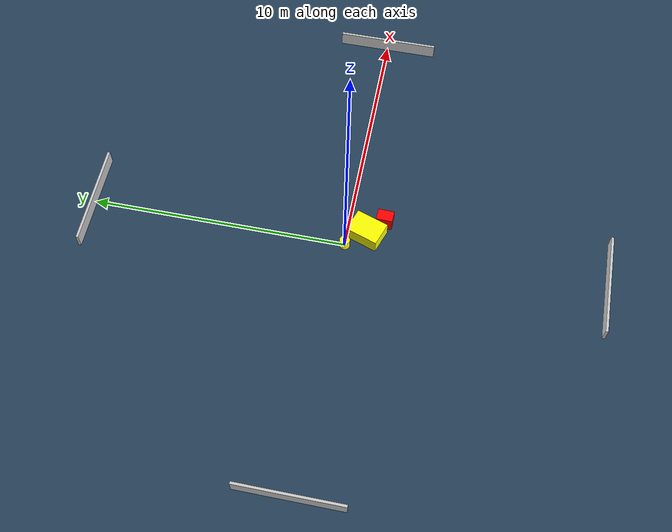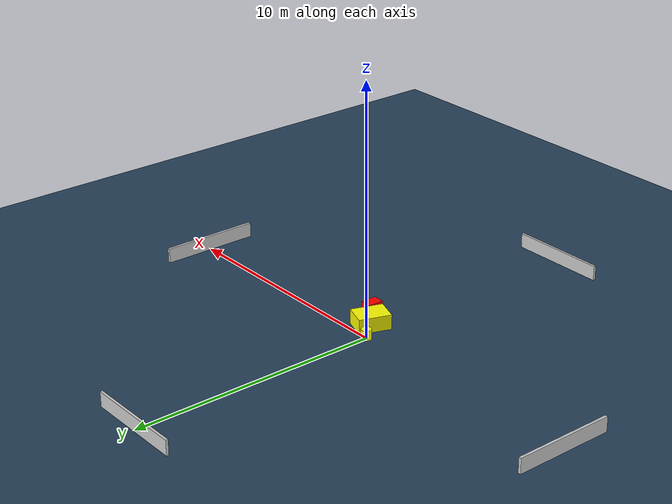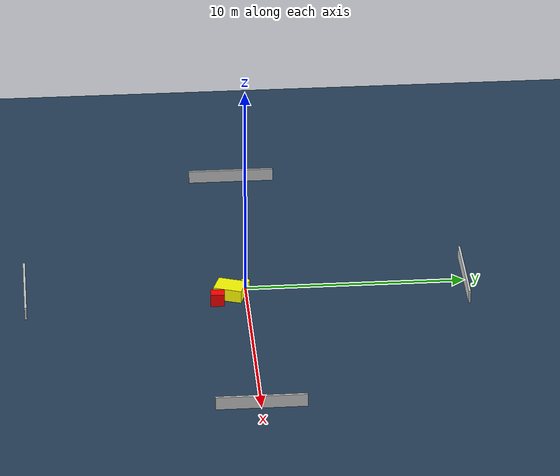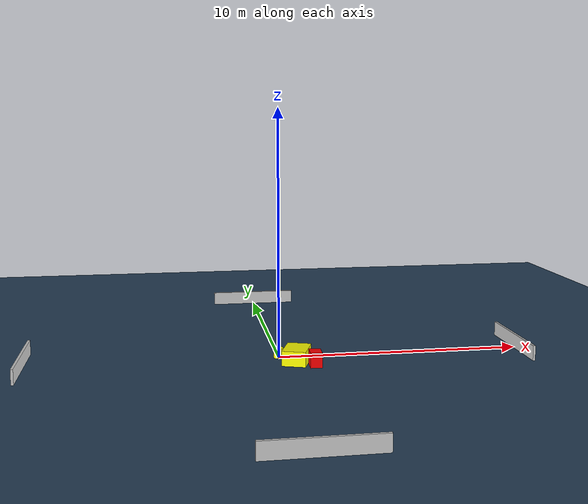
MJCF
<?xml version="1.0" ?>
<mujoco model="generated_environment">
  <option timestep="0.01" integrator="RK4" cone="elliptic"/>
  <default>
    <geom density="1"/>
  </default>
  <asset>
    <texture builtin="gradient" height="3072" name="skybox" rgb1="0.3 0.5 0.7" rgb2="0 0 0" type="skybox" width="512"/>
    <texture builtin="checker" height="300" name="groundplane" rgb1="0.2 0.3 0.4" rgb2="0.1 0.2 0.3" type="2d" width="300"/>
    <material name="groundplane" reflectance="0.2" texrepeat="5 5" texture="groundplane"/>
  </asset>
  <worldbody>
    <light dir="0 0 -1" directional="true" pos="0 0 1.5"/>
    <geom condim="3" friction="0.5 0.005 0.001" material="groundplane" name="floor" pos="0 0 0" size="0 0 0.05" type="plane"/>
    <body name="walls">
      <geom name="wall_1" condim="4" pos="-10.0 0.0 0.3" rgba="0.800000011920929 0.800000011920929 0.800000011920929 1.0" size="0.05 2.0 0.3" type="box"/>
      <geom name="wall_2" condim="4" pos="10.0 0.0 0.3" rgba="0.800000011920929 0.800000011920929 0.800000011920929 1.0" size="0.05 2.0 0.3" type="box"/>
      <geom name="wall_3" condim="4" pos="0.0 -10.0 0.3" rgba="0.800000011920929 0.800000011920929 0.800000011920929 1.0" size="2.0 0.05 0.3" type="box"/>
      <geom name="wall_4" condim="4" pos="0.0 10.0 0.3" rgba="0.800000011920929 0.800000011920929 0.800000011920929 1.0" size="2.0 0.05 0.3" type="box"/>
    </body>
    <body name="robot">
      <joint name="joint_x" type="slide" pos="0 0 0" axis="1 0 0"/>
      <joint name="joint_y" type="slide" pos="0 0 0" axis="0 1 0"/>
      <geom name="robot" type="cylinder" pos="0.0 0.0 0.2" size="0.2 0.2 0.0" mass="5.0" friction="1.0 0.005 0.0001" condim="4" rgba="1.0 1.0 0.0 1.0"/>
    </body>
    <body name="obstacle_1_movable">
      <geom name="obstacle_1_movable" condim="4" pos="0.6222245304248679 -0.741432231771214 0.3" euler="0 0 340.55891197885654" friction="0.0 0.005 0.001" rgba="1.0 1.0 0.0 1.0" size="0.4770148583735828 0.6477472960791981 0.3" type="box" mass="0.1"/>
      <joint type="free"/>
    </body>
    <body name="obstacle_2_static">
      <geom name="obstacle_2_static" condim="4" pos="1.2681098857998012 -1.3429097281751532 0.3" euler="0 0 87.72148268322337" friction="0.0 0.005 0.001" rgba="1.0 0.0 0.0 1.0" size="0.31676858051891915 0.2293840089457935 0.3" type="box"/>
    </body>
  </worldbody>
  <actuator>
    <motor name="actuator_x" joint="joint_x" gear="1" ctrlrange="-1 1"/>
    <motor name="actuator_y" joint="joint_y" gear="1" ctrlrange="-1 1"/>
  </actuator>
</mujoco>
